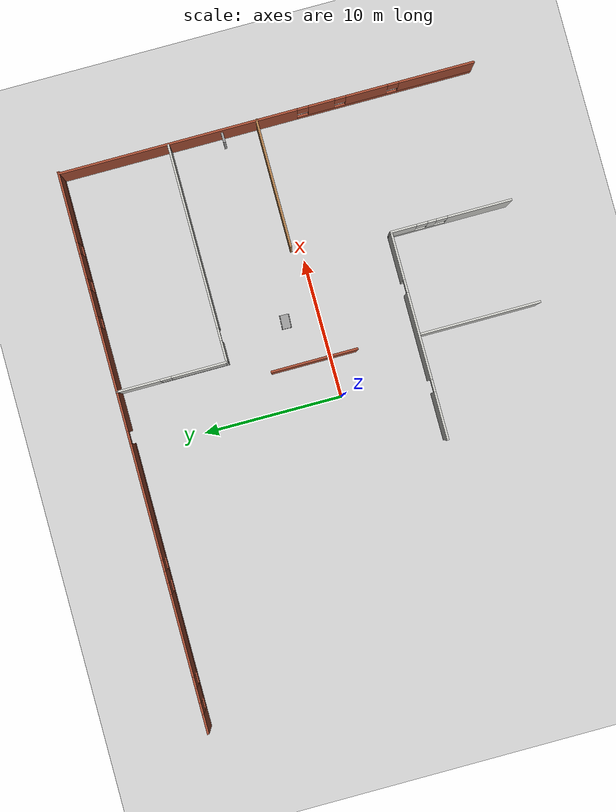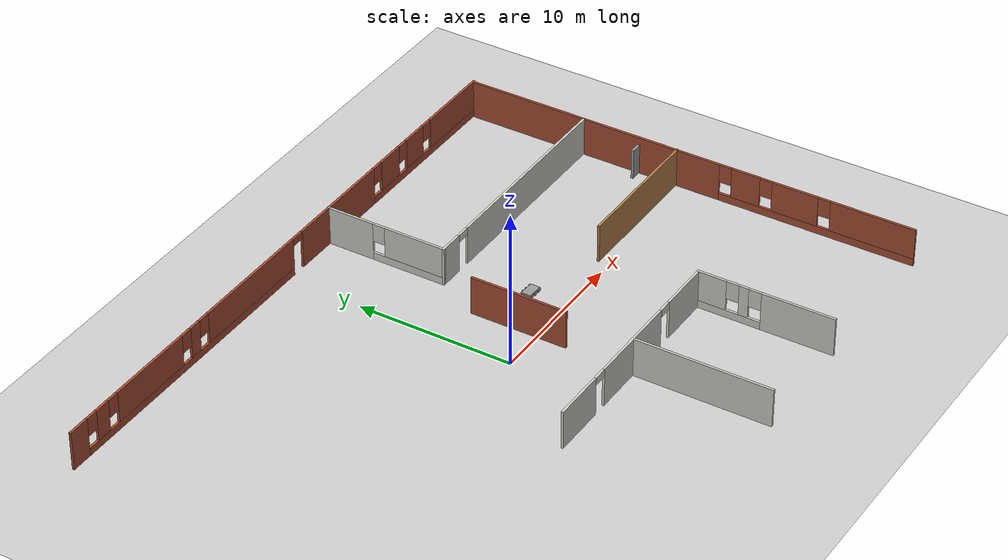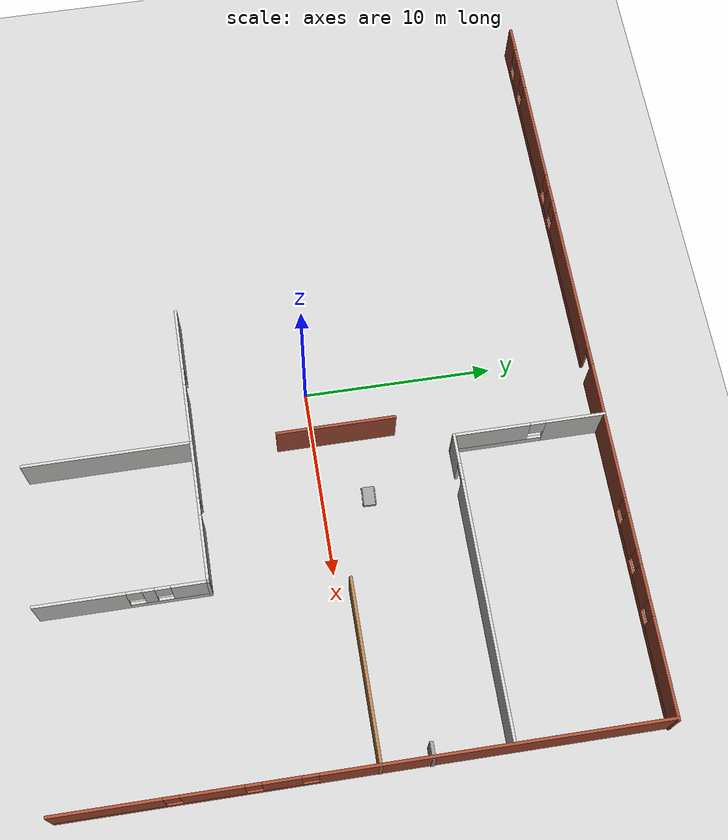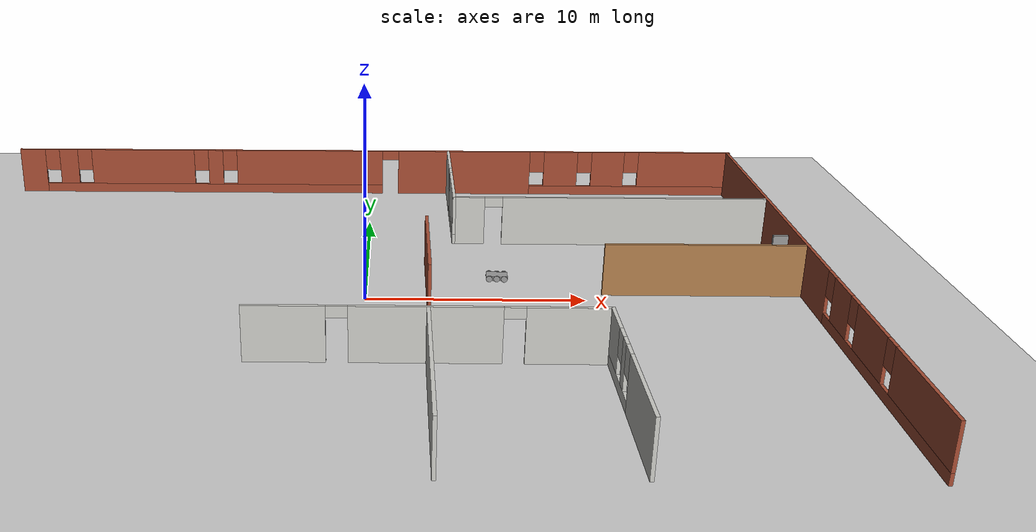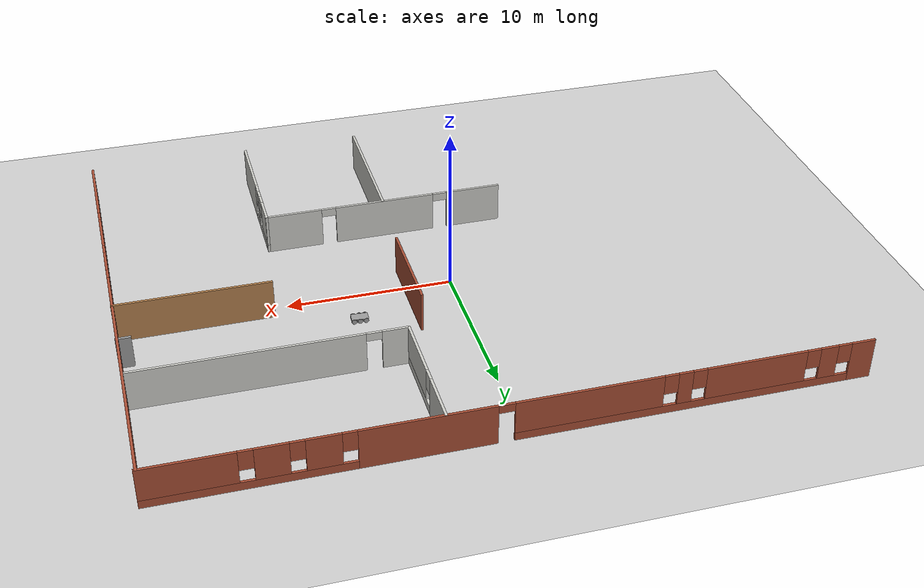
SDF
<sdf version="1.6">
 <world name="default">
  <model name="ground_plane">
   <static>1</static>
   <link name="link">
    <collision name="collision">
     <geometry><plane><normal>0 0 1</normal><size>100 100</size></plane></geometry>
     <surface>
      <contact><collide_bitmask>65535</collide_bitmask></contact>
      <friction><ode><mu>100</mu><mu2>50</mu2></ode></friction>
     </surface>
    </collision>
    <visual name="visual">
     <cast_shadows>0</cast_shadows>
     <geometry><plane><normal>0 0 1</normal><size>100 100</size></plane></geometry>
     <material>
      <script><uri>file://media/materials/scripts/gazebo.material</uri><name>Gazebo/Grey</name></script>
     </material>
    </visual>
   </link>
  </model>
  <model name="Office2">
   <pose>0.0583 0.03565 0 0 -0 0</pose>
   <link name="Door_3">
    <collision name="Door_3_Collision">
     <geometry><box><size>0.9 0.17 2</size></box></geometry>
     <pose>0 0 1 0 -0 0</pose>
    </collision>
    <visual name="Door_3_Visual">
     <pose>0 0 1 0 -0 0</pose>
     <geometry><box><size>0.9 0.17 2</size></box></geometry>
     <material>
      <script><uri>file://media/materials/scripts/gazebo.material</uri><name>Gazebo/Grey</name></script>
     </material>
    </visual>
    <pose>19.6108 3.24042 0 0 -0 0</pose>
   </link>
   <link name="Wall_17">
    <pose>4.25654 10.9903 0 0 -0 -1.5708</pose>
    <visual name="Wall_17_Visual_0">
     <pose>-2.42895 0 1.25 0 -0 0</pose>
     <geometry><box><size>3.1421 0.15 2.5</size></box></geometry>
     <material>
      <script><uri>file://media/materials/scripts/gazebo.material</uri><name>Gazebo/CeilingTiled</name></script>
      <ambient>1 1 1 1</ambient>
     </material>
     <meta><layer>0</layer></meta>
    </visual>
    <collision name="Wall_17_Collision_0">
     <geometry><box><size>3.1421 0.15 2.5</size></box></geometry>
     <pose>-2.42895 0 1.25 0 -0 0</pose>
    </collision>
    <visual name="Wall_17_Visual_1">
     <pose>1.57105 0 0.25 0 -0 0</pose>
     <geometry><box><size>4.8579 0.15 0.5</size></box></geometry>
     <material>
      <script><uri>file://media/materials/scripts/gazebo.material</uri><name>Gazebo/CeilingTiled</name></script>
      <ambient>1 1 1 1</ambient>
     </material>
     <meta><layer>0</layer></meta>
    </visual>
    <collision name="Wall_17_Collision_1">
     <geometry><box><size>4.8579 0.15 0.5</size></box></geometry>
     <pose>1.57105 0 0.25 0 -0 0</pose>
    </collision>
    <visual name="Wall_17_Visual_2">
     <pose>1.97105 0 1.5 0 -0 0</pose>
     <geometry><box><size>4.0579 0.15 2</size></box></geometry>
     <material>
      <script><uri>file://media/materials/scripts/gazebo.material</uri><name>Gazebo/CeilingTiled</name></script>
      <ambient>1 1 1 1</ambient>
     </material>
     <meta><layer>0</layer></meta>
    </visual>
    <collision name="Wall_17_Collision_2">
     <geometry><box><size>4.0579 0.15 2</size></box></geometry>
     <pose>1.97105 0 1.5 0 -0 0</pose>
    </collision>
    <visual name="Wall_17_Visual_3">
     <pose>-0.457904 0 1.9 0 -0 0</pose>
     <geometry><box><size>0.8 0.15 1.2</size></box></geometry>
     <material>
      <script><uri>file://media/materials/scripts/gazebo.material</uri><name>Gazebo/CeilingTiled</name></script>
      <ambient>1 1 1 1</ambient>
     </material>
     <meta><layer>0</layer></meta>
    </visual>
    <collision name="Wall_17_Collision_3">
     <geometry><box><size>0.8 0.15 1.2</size></box></geometry>
     <pose>-0.457904 0 1.9 0 -0 0</pose>
    </collision>
   </link>
   <link name="Wall_18">
    <pose>12.0565 7.06533 0 0 -0 0</pose>
    <visual name="Wall_18_Visual_0">
     <pose>-7.0719 0 1.25 0 -0 0</pose>
     <geometry><box><size>1.6062 0.15 2.5</size></box></geometry>
     <material>
      <script><uri>file://media/materials/scripts/gazebo.material</uri><name>Gazebo/CeilingTiled</name></script>
      <ambient>0.203922 0.396078 0.643137 1</ambient>
     </material>
     <meta><layer>0</layer></meta>
    </visual>
    <collision name="Wall_18_Collision_0">
     <geometry><box><size>1.6062 0.15 2.5</size></box></geometry>
     <pose>-7.0719 0 1.25 0 -0 0</pose>
    </collision>
    <visual name="Wall_18_Visual_1">
     <pose>1.2531 0 1.25 0 -0 0</pose>
     <geometry><box><size>13.2438 0.15 2.5</size></box></geometry>
     <material>
      <script><uri>file://media/materials/scripts/gazebo.material</uri><name>Gazebo/CeilingTiled</name></script>
      <ambient>0.203922 0.396078 0.643137 1</ambient>
     </material>
     <meta><layer>0</layer></meta>
    </visual>
    <collision name="Wall_18_Collision_1">
     <geometry><box><size>13.2438 0.15 2.5</size></box></geometry>
     <pose>1.2531 0 1.25 0 -0 0</pose>
    </collision>
    <visual name="Wall_18_Visual_2">
     <pose>-5.8188 0 2.25 0 -0 0</pose>
     <geometry><box><size>0.9 0.15 0.5</size></box></geometry>
     <material>
      <script><uri>file://media/materials/scripts/gazebo.material</uri><name>Gazebo/CeilingTiled</name></script>
      <ambient>0.203922 0.396078 0.643137 1</ambient>
     </material>
     <meta><layer>0</layer></meta>
    </visual>
    <collision name="Wall_18_Collision_2">
     <geometry><box><size>0.9 0.15 0.5</size></box></geometry>
     <pose>-5.8188 0 2.25 0 -0 0</pose>
    </collision>
   </link>
   <link name="Wall_20">
    <pose>9.98786 -10.5734 0 0 -0 1.5708</pose>
    <visual name="Wall_20_Visual_0">
     <pose>-2.061 0 1.25 0 -0 0</pose>
     <geometry><box><size>4.62799 0.15 2.5</size></box></geometry>
     <material>
      <script><uri>file://media/materials/scripts/gazebo.material</uri><name>Gazebo/CeilingTiled</name></script>
      <ambient>1 1 1 1</ambient>
     </material>
     <meta><layer>0</layer></meta>
    </visual>
    <collision name="Wall_20_Collision_0">
     <geometry><box><size>4.62799 0.15 2.5</size></box></geometry>
     <pose>-2.061 0 1.25 0 -0 0</pose>
    </collision>
    <visual name="Wall_20_Visual_1">
     <pose>2.314 0 0.25 0 -0 0</pose>
     <geometry><box><size>4.12201 0.15 0.5</size></box></geometry>
     <material>
      <script><uri>file://media/materials/scripts/gazebo.material</uri><name>Gazebo/CeilingTiled</name></script>
      <ambient>1 1 1 1</ambient>
     </material>
     <meta><layer>0</layer></meta>
    </visual>
    <collision name="Wall_20_Collision_1">
     <geometry><box><size>4.12201 0.15 0.5</size></box></geometry>
     <pose>2.314 0 0.25 0 -0 0</pose>
    </collision>
    <visual name="Wall_20_Visual_2">
     <pose>1.36057 0 1.5 0 -0 0</pose>
     <geometry><box><size>0.615141 0.15 2</size></box></geometry>
     <material>
      <script><uri>file://media/materials/scripts/gazebo.material</uri><name>Gazebo/CeilingTiled</name></script>
      <ambient>1 1 1 1</ambient>
     </material>
     <meta><layer>0</layer></meta>
    </visual>
    <collision name="Wall_20_Collision_2">
     <geometry><box><size>0.615141 0.15 2</size></box></geometry>
     <pose>1.36057 0 1.5 0 -0 0</pose>
    </collision>
    <visual name="Wall_20_Visual_3">
     <pose>3.42157 0 1.5 0 -0 0</pose>
     <geometry><box><size>1.90687 0.15 2</size></box></geometry>
     <material>
      <script><uri>file://media/materials/scripts/gazebo.material</uri><name>Gazebo/CeilingTiled</name></script>
      <ambient>1 1 1 1</ambient>
     </material>
     <meta><layer>0</layer></meta>
    </visual>
    <collision name="Wall_20_Collision_3">
     <geometry><box><size>1.90687 0.15 2</size></box></geometry>
     <pose>3.42157 0 1.5 0 -0 0</pose>
    </collision>
    <visual name="Wall_20_Visual_4">
     <pose>0.652994 0 1.9 0 -0 0</pose>
     <geometry><box><size>0.8 0.15 1.2</size></box></geometry>
     <material>
      <script><uri>file://media/materials/scripts/gazebo.material</uri><name>Gazebo/CeilingTiled</name></script>
      <ambient>1 1 1 1</ambient>
     </material>
     <meta><layer>0</layer></meta>
    </visual>
    <collision name="Wall_20_Collision_4">
     <geometry><box><size>0.8 0.15 1.2</size></box></geometry>
     <pose>0.652994 0 1.9 0 -0 0</pose>
    </collision>
    <visual name="Wall_20_Visual_5">
     <pose>2.06813 0 1.9 0 -0 0</pose>
     <geometry><box><size>0.8 0.15 1.2</size></box></geometry>
     <material>
      <script><uri>file://media/materials/scripts/gazebo.material</uri><name>Gazebo/CeilingTiled</name></script>
      <ambient>1 1 1 1</ambient>
     </material>
     <meta><layer>0</layer></meta>
    </visual>
    <collision name="Wall_20_Collision_5">
     <geometry><box><size>0.8 0.15 1.2</size></box></geometry>
     <pose>2.06813 0 1.9 0 -0 0</pose>
    </collision>
   </link>
   <link name="Wall_21">
    <pose>2.56286 -6.27339 0 0 -0 3.14159</pose>
    <visual name="Wall_21_Visual_0">
     <pose>-5.74168 0 1.25 0 -0 0</pose>
     <geometry><box><size>3.51664 0.15 2.5</size></box></geometry>
     <material>
      <script><uri>file://media/materials/scripts/gazebo.material</uri><name>Gazebo/CeilingTiled</name></script>
      <ambient>0.203922 0.396078 0.643137 1</ambient>
     </material>
     <meta><layer>0</layer></meta>
    </visual>
    <collision name="Wall_21_Collision_0">
     <geometry><box><size>3.51664 0.15 2.5</size></box></geometry>
     <pose>-5.74168 0 1.25 0 -0 0</pose>
    </collision>
    <visual name="Wall_21_Visual_1">
     <pose>0.03987 0 1.25 0 -0 0</pose>
     <geometry><box><size>6.24646 0.15 2.5</size></box></geometry>
     <material>
      <script><uri>file://media/materials/scripts/gazebo.material</uri><name>Gazebo/CeilingTiled</name></script>
      <ambient>0.203922 0.396078 0.643137 1</ambient>
     </material>
     <meta><layer>0</layer></meta>
    </visual>
    <collision name="Wall_21_Collision_1">
     <geometry><box><size>6.24646 0.15 2.5</size></box></geometry>
     <pose>0.03987 0 1.25 0 -0 0</pose>
    </collision>
    <visual name="Wall_21_Visual_2">
     <pose>5.78155 0 1.25 0 -0 0</pose>
     <geometry><box><size>3.4369 0.15 2.5</size></box></geometry>
     <material>
      <script><uri>file://media/materials/scripts/gazebo.material</uri><name>Gazebo/CeilingTiled</name></script>
      <ambient>0.203922 0.396078 0.643137 1</ambient>
     </material>
     <meta><layer>0</layer></meta>
    </visual>
    <collision name="Wall_21_Collision_2">
     <geometry><box><size>3.4369 0.15 2.5</size></box></geometry>
     <pose>5.78155 0 1.25 0 -0 0</pose>
    </collision>
    <visual name="Wall_21_Visual_3">
     <pose>-3.53336 0 2.25 0 -0 0</pose>
     <geometry><box><size>0.9 0.15 0.5</size></box></geometry>
     <material>
      <script><uri>file://media/materials/scripts/gazebo.material</uri><name>Gazebo/CeilingTiled</name></script>
      <ambient>0.203922 0.396078 0.643137 1</ambient>
     </material>
     <meta><layer>0</layer></meta>
    </visual>
    <collision name="Wall_21_Collision_3">
     <geometry><box><size>0.9 0.15 0.5</size></box></geometry>
     <pose>-3.53336 0 2.25 0 -0 0</pose>
    </collision>
    <visual name="Wall_21_Visual_4">
     <pose>3.6131 0 2.25 0 -0 0</pose>
     <geometry><box><size>0.9 0.15 0.5</size></box></geometry>
     <material>
      <script><uri>file://media/materials/scripts/gazebo.material</uri><name>Gazebo/CeilingTiled</name></script>
      <ambient>0.203922 0.396078 0.643137 1</ambient>
     </material>
     <meta><layer>0</layer></meta>
    </visual>
    <collision name="Wall_21_Collision_4">
     <geometry><box><size>0.9 0.15 0.5</size></box></geometry>
     <pose>3.6131 0 2.25 0 -0 0</pose>
    </collision>
   </link>
   <link name="Wall_24">
    <collision name="Wall_24_Collision">
     <geometry><box><size>8.75 0.15 2.5</size></box></geometry>
     <pose>0 0 1.25 0 -0 0</pose>
    </collision>
    <visual name="Wall_24_Visual">
     <pose>0 0 1.25 0 -0 0</pose>
     <geometry><box><size>8.75 0.15 2.5</size></box></geometry>
     <material>
      <script><uri>file://media/materials/scripts/gazebo.material</uri><name>Gazebo/CeilingTiled</name></script>
      <ambient>1 1 1 1</ambient>
     </material>
     <meta><layer>0</layer></meta>
    </visual>
    <pose>2.62913 -10.6118 0 0 -0 -1.5708</pose>
   </link>
   <link name="Wall_27">
    <collision name="Wall_27_Collision">
     <geometry><box><size>6.25 0.15 2.5</size></box></geometry>
     <pose>0 0 1.25 0 -0 0</pose>
    </collision>
    <visual name="Wall_27_Visual">
     <pose>0 0 1.25 0 -0 0</pose>
     <geometry><box><size>6.25 0.15 2.5</size></box></geometry>
     <material>
      <script><uri>file://media/materials/scripts/gazebo.material</uri><name>Gazebo/Bricks</name></script>
      <ambient>1 1 1 1</ambient>
     </material>
     <meta><layer>0</layer></meta>
    </visual>
    <pose>2.79951 1.18102 0 0 -0 -1.5708</pose>
   </link>
   <link name="Wall_31">
    <collision name="Wall_31_Collision">
     <geometry><box><size>9.25 0.15 2.5</size></box></geometry>
     <pose>0 0 1.25 0 -0 0</pose>
    </collision>
    <visual name="Wall_31_Visual">
     <pose>0 0 1.25 0 -0 0</pose>
     <geometry><box><size>9.25 0.15 2.5</size></box></geometry>
     <material>
      <script><uri>file://media/materials/scripts/gazebo.material</uri><name>Gazebo/Wood</name></script>
      <ambient>1 1 1 1</ambient>
     </material>
     <meta><layer>0</layer></meta>
    </visual>
    <pose>15.4146 0.693165 0 0 -0 3.14159</pose>
   </link>
   <link name="Wall_5">
    <pose>0.017377 14.9252 0 0 -0 0</pose>
    <visual name="Wall_5_Visual_0">
     <pose>-19.3662 0 1.25 0 -0 0</pose>
     <geometry><box><size>1.40917 0.15 2.5</size></box></geometry>
     <material>
      <script><uri>file://media/materials/scripts/gazebo.material</uri><name>Gazebo/Bricks</name></script>
      <ambient>1 1 1 1</ambient>
     </material>
     <meta><layer>0</layer></meta>
    </visual>
    <collision name="Wall_5_Collision_0">
     <geometry><box><size>1.40917 0.15 2.5</size></box></geometry>
     <pose>-19.3662 0 1.25 0 -0 0</pose>
    </collision>
    <visual name="Wall_5_Visual_1">
     <pose>5.14862 0 1.25 0 -0 0</pose>
     <geometry><box><size>7.42858 0.15 2.5</size></box></geometry>
     <material>
      <script><uri>file://media/materials/scripts/gazebo.material</uri><name>Gazebo/Bricks</name></script>
      <ambient>1 1 1 1</ambient>
     </material>
     <meta><layer>0</layer></meta>
    </visual>
    <collision name="Wall_5_Collision_1">
     <geometry><box><size>7.42858 0.15 2.5</size></box></geometry>
     <pose>5.14862 0 1.25 0 -0 0</pose>
    </collision>
    <visual name="Wall_5_Visual_2">
     <pose>-9.06362 0 0.25 0 -0 0</pose>
     <geometry><box><size>19.1959 0.15 0.5</size></box></geometry>
     <material>
      <script><uri>file://media/materials/scripts/gazebo.material</uri><name>Gazebo/Bricks</name></script>
      <ambient>1 1 1 1</ambient>
     </material>
     <meta><layer>0</layer></meta>
    </visual>
    <collision name="Wall_5_Collision_2">
     <geometry><box><size>19.1959 0.15 0.5</size></box></geometry>
     <pose>-9.06362 0 0.25 0 -0 0</pose>
    </collision>
    <visual name="Wall_5_Visual_3">
     <pose>14.4668 0 0.25 0 -0 0</pose>
     <geometry><box><size>11.2078 0.15 0.5</size></box></geometry>
     <material>
      <script><uri>file://media/materials/scripts/gazebo.material</uri><name>Gazebo/Bricks</name></script>
      <ambient>1 1 1 1</ambient>
     </material>
     <meta><layer>0</layer></meta>
    </visual>
    <collision name="Wall_5_Collision_3">
     <geometry><box><size>11.2078 0.15 0.5</size></box></geometry>
     <pose>14.4668 0 0.25 0 -0 0</pose>
    </collision>
    <visual name="Wall_5_Visual_4">
     <pose>-17.3417 0 1.5 0 -0 0</pose>
     <geometry><box><size>1.03968 0.15 2</size></box></geometry>
     <material>
      <script><uri>file://media/materials/scripts/gazebo.material</uri><name>Gazebo/Bricks</name></script>
      <ambient>1 1 1 1</ambient>
     </material>
     <meta><layer>0</layer></meta>
    </visual>
    <collision name="Wall_5_Collision_4">
     <geometry><box><size>1.03968 0.15 2</size></box></geometry>
     <pose>-17.3417 0 1.5 0 -0 0</pose>
    </collision>
    <visual name="Wall_5_Visual_5">
     <pose>-13.0963 0 1.5 0 -0 0</pose>
     <geometry><box><size>5.85116 0.15 2</size></box></geometry>
     <material>
      <script><uri>file://media/materials/scripts/gazebo.material</uri><name>Gazebo/Bricks</name></script>
      <ambient>1 1 1 1</ambient>
     </material>
     <meta><layer>0</layer></meta>
    </visual>
    <collision name="Wall_5_Collision_5">
     <geometry><box><size>5.85116 0.15 2</size></box></geometry>
     <pose>-13.0963 0 1.5 0 -0 0</pose>
    </collision>
    <visual name="Wall_5_Visual_6">
     <pose>-8.95703 0 1.5 0 -0 0</pose>
     <geometry><box><size>0.827413 0.15 2</size></box></geometry>
     <material>
      <script><uri>file://media/materials/scripts/gazebo.material</uri><name>Gazebo/Bricks</name></script>
      <ambient>1 1 1 1</ambient>
     </material>
     <meta><layer>0</layer></meta>
    </visual>
    <collision name="Wall_5_Collision_6">
     <geometry><box><size>0.827413 0.15 2</size></box></geometry>
     <pose>-8.95703 0 1.5 0 -0 0</pose>
    </collision>
    <visual name="Wall_5_Visual_7">
     <pose>-3.60449 0 1.5 0 -0 0</pose>
     <geometry><box><size>8.27766 0.15 2</size></box></geometry>
     <material>
      <script><uri>file://media/materials/scripts/gazebo.material</uri><name>Gazebo/Bricks</name></script>
      <ambient>1 1 1 1</ambient>
     </material>
     <meta><layer>0</layer></meta>
    </visual>
    <collision name="Wall_5_Collision_7">
     <geometry><box><size>8.27766 0.15 2</size></box></geometry>
     <pose>-3.60449 0 1.5 0 -0 0</pose>
    </collision>
    <visual name="Wall_5_Visual_8">
     <pose>-3.60449 0 1.5 0 -0 0</pose>
     <geometry><box><size>8.27766 0.15 2</size></box></geometry>
     <material>
      <script><uri>file://media/materials/scripts/gazebo.material</uri><name>Gazebo/Bricks</name></script>
      <ambient>1 1 1 1</ambient>
     </material>
     <meta><layer>0</layer></meta>
    </visual>
    <collision name="Wall_5_Collision_8">
     <geometry><box><size>8.27766 0.15 2</size></box></geometry>
     <pose>-3.60449 0 1.5 0 -0 0</pose>
    </collision>
    <visual name="Wall_5_Visual_9">
     <pose>10.6073 0 1.5 0 -0 0</pose>
     <geometry><box><size>1.88877 0.15 2</size></box></geometry>
     <material>
      <script><uri>file://media/materials/scripts/gazebo.material</uri><name>Gazebo/Bricks</name></script>
      <ambient>1 1 1 1</ambient>
     </material>
     <meta><layer>0</layer></meta>
    </visual>
    <collision name="Wall_5_Collision_9">
     <geometry><box><size>1.88877 0.15 2</size></box></geometry>
     <pose>10.6073 0 1.5 0 -0 0</pose>
    </collision>
    <visual name="Wall_5_Visual_10">
     <pose>13.2607 0 1.5 0 -0 0</pose>
     <geometry><box><size>1.81801 0.15 2</size></box></geometry>
     <material>
      <script><uri>file://media/materials/scripts/gazebo.material</uri><name>Gazebo/Bricks</name></script>
      <ambient>1 1 1 1</ambient>
     </material>
     <meta><layer>0</layer></meta>
    </visual>
    <collision name="Wall_5_Collision_10">
     <geometry><box><size>1.81801 0.15 2</size></box></geometry>
     <pose>13.2607 0 1.5 0 -0 0</pose>
    </collision>
    <visual name="Wall_5_Visual_11">
     <pose>17.5202 0 1.5 0 -0 0</pose>
     <geometry><box><size>5.10107 0.15 2</size></box></geometry>
     <material>
      <script><uri>file://media/materials/scripts/gazebo.material</uri><name>Gazebo/Bricks</name></script>
      <ambient>1 1 1 1</ambient>
     </material>
     <meta><layer>0</layer></meta>
    </visual>
    <collision name="Wall_5_Collision_11">
     <geometry><box><size>5.10107 0.15 2</size></box></geometry>
     <pose>17.5202 0 1.5 0 -0 0</pose>
    </collision>
    <visual name="Wall_5_Visual_12">
     <pose>-18.2616 0 1.9 0 -0 0</pose>
     <geometry><box><size>0.8 0.15 1.2</size></box></geometry>
     <material>
      <script><uri>file://media/materials/scripts/gazebo.material</uri><name>Gazebo/Bricks</name></script>
      <ambient>1 1 1 1</ambient>
     </material>
     <meta><layer>0</layer></meta>
    </visual>
    <collision name="Wall_5_Collision_12">
     <geometry><box><size>0.8 0.15 1.2</size></box></geometry>
     <pose>-18.2616 0 1.9 0 -0 0</pose>
    </collision>
    <visual name="Wall_5_Visual_13">
     <pose>9.26291 0 1.9 0 -0 0</pose>
     <geometry><box><size>0.8 0.15 1.2</size></box></geometry>
     <material>
      <script><uri>file://media/materials/scripts/gazebo.material</uri><name>Gazebo/Bricks</name></script>
      <ambient>1 1 1 1</ambient>
     </material>
     <meta><layer>0</layer></meta>
    </visual>
    <collision name="Wall_5_Collision_13">
     <geometry><box><size>0.8 0.15 1.2</size></box></geometry>
     <pose>9.26291 0 1.9 0 -0 0</pose>
    </collision>
    <visual name="Wall_5_Visual_14">
     <pose>-16.4219 0 1.9 0 -0 0</pose>
     <geometry><box><size>0.8 0.15 1.2</size></box></geometry>
     <material>
      <script><uri>file://media/materials/scripts/gazebo.material</uri><name>Gazebo/Bricks</name></script>
      <ambient>1 1 1 1</ambient>
     </material>
     <meta><layer>0</layer></meta>
    </visual>
    <collision name="Wall_5_Collision_14">
     <geometry><box><size>0.8 0.15 1.2</size></box></geometry>
     <pose>-16.4219 0 1.9 0 -0 0</pose>
    </collision>
    <visual name="Wall_5_Visual_15">
     <pose>-9.77074 0 1.9 0 -0 0</pose>
     <geometry><box><size>0.8 0.15 1.2</size></box></geometry>
     <material>
      <script><uri>file://media/materials/scripts/gazebo.material</uri><name>Gazebo/Bricks</name></script>
      <ambient>1 1 1 1</ambient>
     </material>
     <meta><layer>0</layer></meta>
    </visual>
    <collision name="Wall_5_Collision_15">
     <geometry><box><size>0.8 0.15 1.2</size></box></geometry>
     <pose>-9.77074 0 1.9 0 -0 0</pose>
    </collision>
    <visual name="Wall_5_Visual_16">
     <pose>-8.14332 0 1.9 0 -0 0</pose>
     <geometry><box><size>0.8 0.15 1.2</size></box></geometry>
     <material>
      <script><uri>file://media/materials/scripts/gazebo.material</uri><name>Gazebo/Bricks</name></script>
      <ambient>1 1 1 1</ambient>
     </material>
     <meta><layer>0</layer></meta>
    </visual>
    <collision name="Wall_5_Collision_16">
     <geometry><box><size>0.8 0.15 1.2</size></box></geometry>
     <pose>-8.14332 0 1.9 0 -0 0</pose>
    </collision>
    <visual name="Wall_5_Visual_17">
     <pose>11.9517 0 1.9 0 -0 0</pose>
     <geometry><box><size>0.8 0.15 1.2</size></box></geometry>
     <material>
      <script><uri>file://media/materials/scripts/gazebo.material</uri><name>Gazebo/Bricks</name></script>
      <ambient>1 1 1 1</ambient>
     </material>
     <meta><layer>0</layer></meta>
    </visual>
    <collision name="Wall_5_Collision_17">
     <geometry><box><size>0.8 0.15 1.2</size></box></geometry>
     <pose>11.9517 0 1.9 0 -0 0</pose>
    </collision>
    <visual name="Wall_5_Visual_18">
     <pose>14.5697 0 1.9 0 -0 0</pose>
     <geometry><box><size>0.8 0.15 1.2</size></box></geometry>
     <material>
      <script><uri>file://media/materials/scripts/gazebo.material</uri><name>Gazebo/Bricks</name></script>
      <ambient>1 1 1 1</ambient>
     </material>
     <meta><layer>0</layer></meta>
    </visual>
    <collision name="Wall_5_Collision_18">
     <geometry><box><size>0.8 0.15 1.2</size></box></geometry>
     <pose>14.5697 0 1.9 0 -0 0</pose>
    </collision>
    <visual name="Wall_5_Visual_19">
     <pose>0.984336 0 2.25 0 -0 0</pose>
     <geometry><box><size>0.9 0.15 0.5</size></box></geometry>
     <material>
      <script><uri>file://media/materials/scripts/gazebo.material</uri><name>Gazebo/Bricks</name></script>
      <ambient>1 1 1 1</ambient>
     </material>
     <meta><layer>0</layer></meta>
    </visual>
    <collision name="Wall_5_Collision_19">
     <geometry><box><size>0.9 0.15 0.5</size></box></geometry>
     <pose>0.984336 0 2.25 0 -0 0</pose>
    </collision>
    <visual name="Wall_5_Visual_20">
     <pose>0.984336 0 2.25 0 -0 0</pose>
     <geometry><box><size>0.9 0.15 0.5</size></box></geometry>
     <material>
      <script><uri>file://media/materials/scripts/gazebo.material</uri><name>Gazebo/Bricks</name></script>
      <ambient>1 1 1 1</ambient>
     </material>
     <meta><layer>0</layer></meta>
    </visual>
    <collision name="Wall_5_Collision_20">
     <geometry><box><size>0.9 0.15 0.5</size></box></geometry>
     <pose>0.984336 0 2.25 0 -0 0</pose>
    </collision>
   </link>
   <link name="Wall_7">
    <pose>19.9424 0.000161 0 0 -0 -1.5708</pose>
    <visual name="Wall_7_Visual_0">
     <pose>-6.38371 0 1.25 0 -0 0</pose>
     <geometry><box><size>17.2326 0.15 2.5</size></box></geometry>
     <material>
      <script><uri>file://media/materials/scripts/gazebo.material</uri><name>Gazebo/Bricks</name></script>
      <ambient>1 1 1 1</ambient>
     </material>
     <meta><layer>0</layer></meta>
    </visual>
    <collision name="Wall_7_Collision_0">
     <geometry><box><size>17.2326 0.15 2.5</size></box></geometry>
     <pose>-6.38371 0 1.25 0 -0 0</pose>
    </collision>
    <visual name="Wall_7_Visual_1">
     <pose>8.61629 0 0.25 0 -0 0</pose>
     <geometry><box><size>12.7674 0.15 0.5</size></box></geometry>
     <material>
      <script><uri>file://media/materials/scripts/gazebo.material</uri><name>Gazebo/Bricks</name></script>
      <ambient>1 1 1 1</ambient>
     </material>
     <meta><layer>0</layer></meta>
    </visual>
    <collision name="Wall_7_Collision_1">
     <geometry><box><size>12.7674 0.15 0.5</size></box></geometry>
     <pose>8.61629 0 0.25 0 -0 0</pose>
    </collision>
    <visual name="Wall_7_Visual_2">
     <pose>3.97696 0 1.5 0 -0 0</pose>
     <geometry><box><size>1.88877 0.15 2</size></box></geometry>
     <material>
      <script><uri>file://media/materials/scripts/gazebo.material</uri><name>Gazebo/Bricks</name></script>
      <ambient>1 1 1 1</ambient>
     </material>
     <meta><layer>0</layer></meta>
    </visual>
    <collision name="Wall_7_Collision_2">
     <geometry><box><size>1.88877 0.15 2</size></box></geometry>
     <pose>3.97696 0 1.5 0 -0 0</pose>
    </collision>
    <visual name="Wall_7_Visual_3">
     <pose>7.23179 0 1.5 0 -0 0</pose>
     <geometry><box><size>3.02088 0.15 2</size></box></geometry>
     <material>
      <script><uri>file://media/materials/scripts/gazebo.material</uri><name>Gazebo/Bricks</name></script>
      <ambient>1 1 1 1</ambient>
     </material>
     <meta><layer>0</layer></meta>
    </visual>
    <collision name="Wall_7_Collision_3">
     <geometry><box><size>3.02088 0.15 2</size></box></geometry>
     <pose>7.23179 0 1.5 0 -0 0</pose>
    </collision>
    <visual name="Wall_7_Visual_4">
     <pose>12.2711 0 1.5 0 -0 0</pose>
     <geometry><box><size>5.45777 0.15 2</size></box></geometry>
     <material>
      <script><uri>file://media/materials/scripts/gazebo.material</uri><name>Gazebo/Bricks</name></script>
      <ambient>1 1 1 1</ambient>
     </material>
     <meta><layer>0</layer></meta>
    </visual>
    <collision name="Wall_7_Collision_4">
     <geometry><box><size>5.45777 0.15 2</size></box></geometry>
     <pose>12.2711 0 1.5 0 -0 0</pose>
    </collision>
    <visual name="Wall_7_Visual_5">
     <pose>2.63258 0 1.9 0 -0 0</pose>
     <geometry><box><size>0.8 0.15 1.2</size></box></geometry>
     <material>
      <script><uri>file://media/materials/scripts/gazebo.material</uri><name>Gazebo/Bricks</name></script>
      <ambient>1 1 1 1</ambient>
     </material>
     <meta><layer>0</layer></meta>
    </visual>
    <collision name="Wall_7_Collision_5">
     <geometry><box><size>0.8 0.15 1.2</size></box></geometry>
     <pose>2.63258 0 1.9 0 -0 0</pose>
    </collision>
    <visual name="Wall_7_Visual_6">
     <pose>5.32135 0 1.9 0 -0 0</pose>
     <geometry><box><size>0.8 0.15 1.2</size></box></geometry>
     <material>
      <script><uri>file://media/materials/scripts/gazebo.material</uri><name>Gazebo/Bricks</name></script>
      <ambient>1 1 1 1</ambient>
     </material>
     <meta><layer>0</layer></meta>
    </visual>
    <collision name="Wall_7_Collision_6">
     <geometry><box><size>0.8 0.15 1.2</size></box></geometry>
     <pose>5.32135 0 1.9 0 -0 0</pose>
    </collision>
    <visual name="Wall_7_Visual_7">
     <pose>9.14223 0 1.9 0 -0 0</pose>
     <geometry><box><size>0.8 0.15 1.2</size></box></geometry>
     <material>
      <script><uri>file://media/materials/scripts/gazebo.material</uri><name>Gazebo/Bricks</name></script>
      <ambient>1 1 1 1</ambient>
     </material>
     <meta><layer>0</layer></meta>
    </visual>
    <collision name="Wall_7_Collision_7">
     <geometry><box><size>0.8 0.15 1.2</size></box></geometry>
     <pose>9.14223 0 1.9 0 -0 0</pose>
    </collision>
   </link>
   <static>1</static>
  </model>
  <model name="rover1_0">
   <link name="link_0">
    <inertial>
     <mass>1</mass>
     <inertia>
      <ixx>0.166667</ixx>
      <ixy>0</ixy>
      <ixz>0</ixz>
      <iyy>0.166667</iyy>
      <iyz>0</iyz>
      <izz>0.166667</izz>
     </inertia>
    </inertial>
    <pose>-0.000993 0.033414 0.112494 0 -0 1.5707</pose>
    <visual name="visual">
     <geometry><box><size>0.6 1 0.2</size></box></geometry>
     <material>
      <lighting>1</lighting>
      <script><uri>file://media/materials/scripts/gazebo.material</uri><name>Gazebo/Grey</name></script>
      <shader type="vertex"><normal_map>__default__</normal_map></shader>
      <ambient>0.3 0.3 0.3 1</ambient>
      <diffuse>0.7 0.7 0.7 1</diffuse>
      <specular>0.01 0.01 0.01 1</specular>
      <emissive>0 0 0 1</emissive>
     </material>
    </visual>
    <collision name="collision">
     <geometry><box><size>0.6 1 0.2</size></box></geometry>
     <surface>
      <friction>
       <ode><mu>1</mu><mu2>1</mu2><fdir1>0 0 0</fdir1><slip1>0</slip1><slip2>0</slip2></ode>
       <torsional>
        <coefficient>1</coefficient>
        <patch_radius>0</patch_radius>
        <surface_radius>0</surface_radius>
        <use_patch_radius>1</use_patch_radius>
        <ode><slip>0</slip></ode>
       </torsional>
      </friction>
      <bounce><restitution_coefficient>0</restitution_coefficient><threshold>1e+06</threshold></bounce>
      <contact>
       <collide_without_contact>0</collide_without_contact>
       <collide_without_contact_bitmask>1</collide_without_contact_bitmask>
       <collide_bitmask>1</collide_bitmask>
       <ode>
        <soft_cfm>0</soft_cfm>
        <soft_erp>0.2</soft_erp>
        <kp>1e+13</kp>
        <kd>1</kd>
        <max_vel>0.01</max_vel>
        <min_depth>0</min_depth>
       </ode>
       <bullet>
        <split_impulse>1</split_impulse>
        <split_impulse_penetration_threshold>-0.01</split_impulse_penetration_threshold>
        <soft_cfm>0</soft_cfm>
        <soft_erp>0.2</soft_erp>
        <kp>1e+13</kp>
        <kd>1</kd>
       </bullet>
      </contact>
     </surface>
    </collision>
   </link>
   <link name="link_1">
    <inertial>
     <mass>1</mass>
     <inertia><ixx>0.145833</ixx><ixy>0</ixy><ixz>0</ixz><iyy>0.145833</iyy><iyz>0</iyz><izz>0.125</izz></inertia>
    </inertial>
    <pose>-0.000993 -0.291648 0.102481 1.5707 -0 0</pose>
    <visual name="visual">
     <geometry><cylinder><radius>0.15</radius><length>0.05</length></cylinder></geometry>
     <material>
      <lighting>1</lighting>
      <script><uri>file://media/materials/scripts/gazebo.material</uri><name>Gazebo/Grey</name></script>
      <shader type="vertex"><normal_map>__default__</normal_map></shader>
      <ambient>0.3 0.3 0.3 1</ambient>
      <diffuse>0.7 0.7 0.7 1</diffuse>
      <specular>0.01 0.01 0.01 1</specular>
      <emissive>0 0 0 1</emissive>
     </material>
    </visual>
    <collision name="collision">
     <geometry><cylinder><radius>0.15</radius><length>0.05</length></cylinder></geometry>
     <surface>
      <friction>
       <ode><mu>1</mu><mu2>1</mu2><fdir1>0 0 0</fdir1><slip1>0</slip1><slip2>0</slip2></ode>
       <torsional>
        <coefficient>1</coefficient>
        <patch_radius>0</patch_radius>
        <surface_radius>0</surface_radius>
        <use_patch_radius>1</use_patch_radius>
        <ode><slip>0</slip></ode>
       </torsional>
      </friction>
      <bounce><restitution_coefficient>0</restitution_coefficient><threshold>1e+06</threshold></bounce>
      <contact>
       <collide_without_contact>0</collide_without_contact>
       <collide_without_contact_bitmask>1</collide_without_contact_bitmask>
       <collide_bitmask>1</collide_bitmask>
       <ode>
        <soft_cfm>0</soft_cfm>
        <soft_erp>0.2</soft_erp>
        <kp>1e+13</kp>
        <kd>1</kd>
        <max_vel>0.01</max_vel>
        <min_depth>0</min_depth>
       </ode>
       <bullet>
        <split_impulse>1</split_impulse>
        <split_impulse_penetration_threshold>-0.01</split_impulse_penetration_threshold>
        <soft_cfm>0</soft_cfm>
        <soft_erp>0.2</soft_erp>
        <kp>1e+13</kp>
        <kd>1</kd>
       </bullet>
      </contact>
     </surface>
    </collision>
   </link>
   <link name="link_1_clone">
    <inertial>
     <mass>1</mass>
     <inertia><ixx>0.145833</ixx><ixy>0</ixy><ixz>0</ixz><iyy>0.145833</iyy><iyz>0</iyz><izz>0.125</izz></inertia>
    </inertial>
    <pose>-0.351021 -0.291648 0.098131 1.5707 -0 0</pose>
    <visual name="visual">
     <geometry><cylinder><radius>0.15</radius><length>0.05</length></cylinder></geometry>
     <material>
      <lighting>1</lighting>
      <script><uri>file://media/materials/scripts/gazebo.material</uri><name>Gazebo/Grey</name></script>
      <shader type="vertex"><normal_map>__default__</normal_map></shader>
      <ambient>0.3 0.3 0.3 1</ambient>
      <diffuse>0.7 0.7 0.7 1</diffuse>
      <specular>0.01 0.01 0.01 1</specular>
      <emissive>0 0 0 1</emissive>
     </material>
    </visual>
    <collision name="collision">
     <geometry><cylinder><radius>0.15</radius><length>0.05</length></cylinder></geometry>
     <surface>
      <friction>
       <ode><mu>1</mu><mu2>1</mu2><fdir1>0 0 0</fdir1><slip1>0</slip1><slip2>0</slip2></ode>
       <torsional>
        <coefficient>1</coefficient>
        <patch_radius>0</patch_radius>
        <surface_radius>0</surface_radius>
        <use_patch_radius>1</use_patch_radius>
        <ode><slip>0</slip></ode>
       </torsional>
      </friction>
      <bounce><restitution_coefficient>0</restitution_coefficient><threshold>1e+06</threshold></bounce>
      <contact>
       <collide_without_contact>0</collide_without_contact>
       <collide_without_contact_bitmask>1</collide_without_contact_bitmask>
       <collide_bitmask>1</collide_bitmask>
       <ode>
        <soft_cfm>0</soft_cfm>
        <soft_erp>0.2</soft_erp>
        <kp>1e+13</kp>
        <kd>1</kd>
        <max_vel>0.01</max_vel>
        <min_depth>0</min_depth>
       </ode>
       <bullet>
        <split_impulse>1</split_impulse>
        <split_impulse_penetration_threshold>-0.01</split_impulse_penetration_threshold>
        <soft_cfm>0</soft_cfm>
        <soft_erp>0.2</soft_erp>
        <kp>1e+13</kp>
        <kd>1</kd>
       </bullet>
      </contact>
     </surface>
    </collision>
   </link>
   <link name="link_1_clone_0">
    <inertial>
     <mass>1</mass>
     <inertia><ixx>0.145833</ixx><ixy>0</ixy><ixz>0</ixz><iyy>0.145833</iyy><iyz>0</iyz><izz>0.125</izz></inertia>
    </inertial>
    <pose>0.349036 -0.291648 0.102492 1.5707 -0 0</pose>
    <visual name="visual">
     <geometry><cylinder><radius>0.15</radius><length>0.05</length></cylinder></geometry>
     <material>
      <lighting>1</lighting>
      <script><uri>file://media/materials/scripts/gazebo.material</uri><name>Gazebo/Grey</name></script>
      <shader type="vertex"><normal_map>__default__</normal_map></shader>
      <ambient>0.3 0.3 0.3 1</ambient>
      <diffuse>0.7 0.7 0.7 1</diffuse>
      <specular>0.01 0.01 0.01 1</specular>
      <emissive>0 0 0 1</emissive>
     </material>
    </visual>
    <collision name="collision">
     <geometry><cylinder><radius>0.15</radius><length>0.05</length></cylinder></geometry>
     <surface>
      <friction>
       <ode><mu>1</mu><mu2>1</mu2><fdir1>0 0 0</fdir1><slip1>0</slip1><slip2>0</slip2></ode>
       <torsional>
        <coefficient>1</coefficient>
        <patch_radius>0</patch_radius>
        <surface_radius>0</surface_radius>
        <use_patch_radius>1</use_patch_radius>
        <ode><slip>0</slip></ode>
       </torsional>
      </friction>
      <bounce><restitution_coefficient>0</restitution_coefficient><threshold>1e+06</threshold></bounce>
      <contact>
       <collide_without_contact>0</collide_without_contact>
       <collide_without_contact_bitmask>1</collide_without_contact_bitmask>
       <collide_bitmask>1</collide_bitmask>
       <ode>
        <soft_cfm>0</soft_cfm>
        <soft_erp>0.2</soft_erp>
        <kp>1e+13</kp>
        <kd>1</kd>
        <max_vel>0.01</max_vel>
        <min_depth>0</min_depth>
       </ode>
       <bullet>
        <split_impulse>1</split_impulse>
        <split_impulse_penetration_threshold>-0.01</split_impulse_penetration_threshold>
        <soft_cfm>0</soft_cfm>
        <soft_erp>0.2</soft_erp>
        <kp>1e+13</kp>
        <kd>1</kd>
       </bullet>
      </contact>
     </surface>
    </collision>
   </link>
   <link name="link_1_clone_1">
    <inertial>
     <mass>1</mass>
     <inertia><ixx>0.145833</ixx><ixy>0</ixy><ixz>0</ixz><iyy>0.145833</iyy><iyz>0</iyz><izz>0.125</izz></inertia>
    </inertial>
    <pose>-0.351022 0.358477 0.102492 1.5707 -0 0</pose>
    <visual name="visual">
     <geometry><cylinder><radius>0.15</radius><length>0.05</length></cylinder></geometry>
     <material>
      <lighting>1</lighting>
      <script><uri>file://media/materials/scripts/gazebo.material</uri><name>Gazebo/Grey</name></script>
      <shader type="vertex"><normal_map>__default__</normal_map></shader>
      <ambient>0.3 0.3 0.3 1</ambient>
      <diffuse>0.7 0.7 0.7 1</diffuse>
      <specular>0.01 0.01 0.01 1</specular>
      <emissive>0 0 0 1</emissive>
     </material>
    </visual>
    <collision name="collision">
     <geometry><cylinder><radius>0.15</radius><length>0.05</length></cylinder></geometry>
     <surface>
      <friction>
       <ode><mu>1</mu><mu2>1</mu2><fdir1>0 0 0</fdir1><slip1>0</slip1><slip2>0</slip2></ode>
       <torsional>
        <coefficient>1</coefficient>
        <patch_radius>0</patch_radius>
        <surface_radius>0</surface_radius>
        <use_patch_radius>1</use_patch_radius>
        <ode><slip>0</slip></ode>
       </torsional>
      </friction>
      <bounce><restitution_coefficient>0</restitution_coefficient><threshold>1e+06</threshold></bounce>
      <contact>
       <collide_without_contact>0</collide_without_contact>
       <collide_without_contact_bitmask>1</collide_without_contact_bitmask>
       <collide_bitmask>1</collide_bitmask>
       <ode>
        <soft_cfm>0</soft_cfm>
        <soft_erp>0.2</soft_erp>
        <kp>1e+13</kp>
        <kd>1</kd>
        <max_vel>0.01</max_vel>
        <min_depth>0</min_depth>
       </ode>
       <bullet>
        <split_impulse>1</split_impulse>
        <split_impulse_penetration_threshold>-0.01</split_impulse_penetration_threshold>
        <soft_cfm>0</soft_cfm>
        <soft_erp>0.2</soft_erp>
        <kp>1e+13</kp>
        <kd>1</kd>
       </bullet>
      </contact>
     </surface>
    </collision>
   </link>
   <link name="link_1_clone_2">
    <inertial>
     <mass>1</mass>
     <inertia><ixx>0.145833</ixx><ixy>0</ixy><ixz>0</ixz><iyy>0.145833</iyy><iyz>0</iyz><izz>0.125</izz></inertia>
    </inertial>
    <pose>-0.000993 0.358477 0.102492 1.5707 -0 0</pose>
    <visual name="visual">
     <geometry><cylinder><radius>0.15</radius><length>0.05</length></cylinder></geometry>
     <material>
      <lighting>1</lighting>
      <script><uri>file://media/materials/scripts/gazebo.material</uri><name>Gazebo/Grey</name></script>
      <shader type="vertex"><normal_map>__default__</normal_map></shader>
      <ambient>0.3 0.3 0.3 1</ambient>
      <diffuse>0.7 0.7 0.7 1</diffuse>
      <specular>0.01 0.01 0.01 1</specular>
      <emissive>0 0 0 1</emissive>
     </material>
    </visual>
    <collision name="collision">
     <geometry><cylinder><radius>0.15</radius><length>0.05</length></cylinder></geometry>
     <surface>
      <friction>
       <ode><mu>1</mu><mu2>1</mu2><fdir1>0 0 0</fdir1><slip1>0</slip1><slip2>0</slip2></ode>
       <torsional>
        <coefficient>1</coefficient>
        <patch_radius>0</patch_radius>
        <surface_radius>0</surface_radius>
        <use_patch_radius>1</use_patch_radius>
        <ode><slip>0</slip></ode>
       </torsional>
      </friction>
      <bounce><restitution_coefficient>0</restitution_coefficient><threshold>1e+06</threshold></bounce>
      <contact>
       <collide_without_contact>0</collide_without_contact>
       <collide_without_contact_bitmask>1</collide_without_contact_bitmask>
       <collide_bitmask>1</collide_bitmask>
       <ode>
        <soft_cfm>0</soft_cfm>
        <soft_erp>0.2</soft_erp>
        <kp>1e+13</kp>
        <kd>1</kd>
        <max_vel>0.01</max_vel>
        <min_depth>0</min_depth>
       </ode>
       <bullet>
        <split_impulse>1</split_impulse>
        <split_impulse_penetration_threshold>-0.01</split_impulse_penetration_threshold>
        <soft_cfm>0</soft_cfm>
        <soft_erp>0.2</soft_erp>
        <kp>1e+13</kp>
        <kd>1</kd>
       </bullet>
      </contact>
     </surface>
    </collision>
   </link>
   <link name="link_1_clone_3">
    <inertial>
     <mass>1</mass>
     <inertia><ixx>0.145833</ixx><ixy>0</ixy><ixz>0</ixz><iyy>0.145833</iyy><iyz>0</iyz><izz>0.125</izz></inertia>
    </inertial>
    <pose>0.349036 0.358477 0.102492 1.5707 -0 0</pose>
    <visual name="visual">
     <geometry><cylinder><radius>0.15</radius><length>0.05</length></cylinder></geometry>
     <material>
      <lighting>1</lighting>
      <script><uri>file://media/materials/scripts/gazebo.material</uri><name>Gazebo/Grey</name></script>
      <shader type="vertex"><normal_map>__default__</normal_map></shader>
      <ambient>0.3 0.3 0.3 1</ambient>
      <diffuse>0.7 0.7 0.7 1</diffuse>
      <specular>0.01 0.01 0.01 1</specular>
      <emissive>0 0 0 1</emissive>
     </material>
    </visual>
    <collision name="collision">
     <geometry><cylinder><radius>0.15</radius><length>0.05</length></cylinder></geometry>
     <surface>
      <friction>
       <ode><mu>1</mu><mu2>1</mu2><fdir1>0 0 0</fdir1><slip1>0</slip1><slip2>0</slip2></ode>
       <torsional>
        <coefficient>1</coefficient>
        <patch_radius>0</patch_radius>
        <surface_radius>0</surface_radius>
        <use_patch_radius>1</use_patch_radius>
        <ode><slip>0</slip></ode>
       </torsional>
      </friction>
      <bounce><restitution_coefficient>0</restitution_coefficient><threshold>1e+06</threshold></bounce>
      <contact>
       <collide_without_contact>0</collide_without_contact>
       <collide_without_contact_bitmask>1</collide_without_contact_bitmask>
       <collide_bitmask>1</collide_bitmask>
       <ode>
        <soft_cfm>0</soft_cfm>
        <soft_erp>0.2</soft_erp>
        <kp>1e+13</kp>
        <kd>1</kd>
        <max_vel>0.01</max_vel>
        <min_depth>0</min_depth>
       </ode>
       <bullet>
        <split_impulse>1</split_impulse>
        <split_impulse_penetration_threshold>-0.01</split_impulse_penetration_threshold>
        <soft_cfm>0</soft_cfm>
        <soft_erp>0.2</soft_erp>
        <kp>1e+13</kp>
        <kd>1</kd>
       </bullet>
      </contact>
     </surface>
    </collision>
   </link>
   <joint name="link_0_JOINT_1" type="revolute">
    <parent>link_0</parent>
    <child>link_1</child>
    <axis>
     <xyz>0 0 1</xyz>
     <use_parent_model_frame>0</use_parent_model_frame>
     <limit>
      <lower>-1.79769e+308</lower>
      <upper>1.79769e+308</upper>
      <effort>-1</effort>
      <velocity>-1</velocity>
     </limit>
     <dynamics>
      <spring_reference>0</spring_reference>
      <spring_stiffness>0</spring_stiffness>
      <damping>0</damping>
     </dynamics>
    </axis>
    <physics>
     <ode><limit><cfm>0</cfm><erp>0.2</erp></limit><suspension><cfm>0</cfm><erp>0.2</erp></suspension></ode>
    </physics>
   </joint>
   <joint name="link_0_JOINT_2" type="revolute">
    <parent>link_0</parent>
    <child>link_1_clone_0</child>
    <axis>
     <xyz>0 0 1</xyz>
     <use_parent_model_frame>0</use_parent_model_frame>
     <limit>
      <lower>-1.79769e+308</lower>
      <upper>1.79769e+308</upper>
      <effort>-1</effort>
      <velocity>-1</velocity>
     </limit>
     <dynamics>
      <spring_reference>0</spring_reference>
      <spring_stiffness>0</spring_stiffness>
      <damping>0</damping>
     </dynamics>
    </axis>
    <physics>
     <ode><limit><cfm>0</cfm><erp>0.2</erp></limit><suspension><cfm>0</cfm><erp>0.2</erp></suspension></ode>
    </physics>
   </joint>
   <joint name="link_0_JOINT_3" type="revolute">
    <parent>link_0</parent>
    <child>link_1_clone_1</child>
    <axis>
     <xyz>0 0 1</xyz>
     <use_parent_model_frame>0</use_parent_model_frame>
     <limit>
      <lower>-1.79769e+308</lower>
      <upper>1.79769e+308</upper>
      <effort>-1</effort>
      <velocity>-1</velocity>
     </limit>
     <dynamics>
      <spring_reference>0</spring_reference>
      <spring_stiffness>0</spring_stiffness>
      <damping>0</damping>
     </dynamics>
    </axis>
    <physics>
     <ode><limit><cfm>0</cfm><erp>0.2</erp></limit><suspension><cfm>0</cfm><erp>0.2</erp></suspension></ode>
    </physics>
   </joint>
   <joint name="link_0_JOINT_4" type="revolute">
    <parent>link_0</parent>
    <child>link_1_clone_2</child>
    <axis>
     <xyz>0 0 1</xyz>
     <use_parent_model_frame>0</use_parent_model_frame>
     <limit>
      <lower>-1.79769e+308</lower>
      <upper>1.79769e+308</upper>
      <effort>-1</effort>
      <velocity>-1</velocity>
     </limit>
     <dynamics>
      <spring_reference>0</spring_reference>
      <spring_stiffness>0</spring_stiffness>
      <damping>0</damping>
     </dynamics>
    </axis>
    <physics>
     <ode><limit><cfm>0</cfm><erp>0.2</erp></limit><suspension><cfm>0</cfm><erp>0.2</erp></suspension></ode>
    </physics>
   </joint>
   <joint name="link_0_JOINT_5" type="revolute">
    <parent>link_0</parent>
    <child>link_1_clone_3</child>
    <axis>
     <xyz>1 0 0</xyz>
     <use_parent_model_frame>0</use_parent_model_frame>
     <limit>
      <lower>-1.79769e+308</lower>
      <upper>1.79769e+308</upper>
      <effort>-1</effort>
      <velocity>-1</velocity>
     </limit>
     <dynamics>
      <spring_reference>0</spring_reference>
      <spring_stiffness>0</spring_stiffness>
      <damping>0</damping>
     </dynamics>
    </axis>
    <physics>
     <ode><limit><cfm>0</cfm><erp>0.2</erp></limit><suspension><cfm>0</cfm><erp>0.2</erp></suspension></ode>
    </physics>
   </joint>
   <joint name="link_1_clone_JOINT_0" type="revolute">
    <parent>link_0</parent>
    <child>link_1_clone</child>
    <axis>
     <xyz>0 0 1</xyz>
     <use_parent_model_frame>0</use_parent_model_frame>
     <limit>
      <lower>-1.79769e+308</lower>
      <upper>1.79769e+308</upper>
      <effort>-1</effort>
      <velocity>-1</velocity>
     </limit>
     <dynamics>
      <spring_reference>0</spring_reference>
      <spring_stiffness>0</spring_stiffness>
      <damping>0</damping>
     </dynamics>
    </axis>
    <physics>
     <ode><limit><cfm>0</cfm><erp>0.2</erp></limit><suspension><cfm>0</cfm><erp>0.2</erp></suspension></ode>
    </physics>
   </joint>
   <static>0</static>
   <pose>6.15761 2.39243 0.049687 -3.4e-05 0.006201 -0.040032</pose>
  </model>
 </world>
</sdf>
